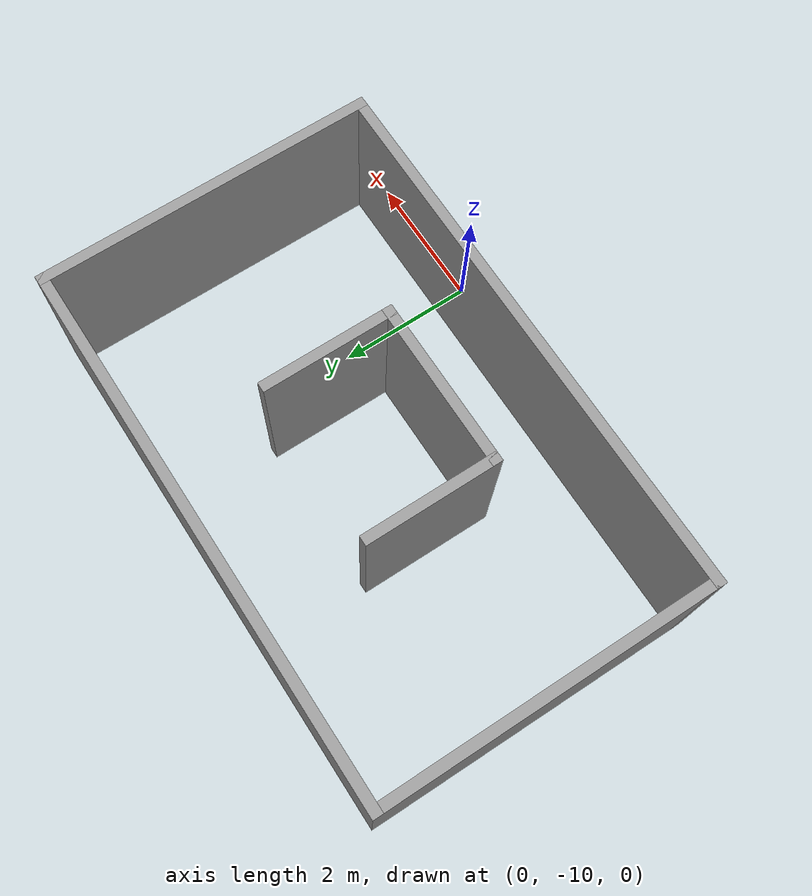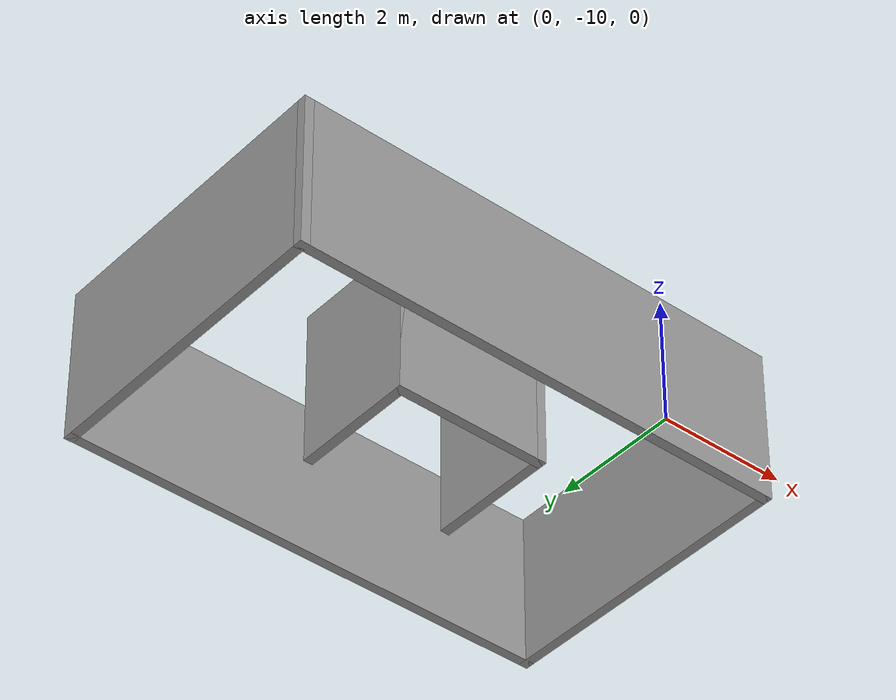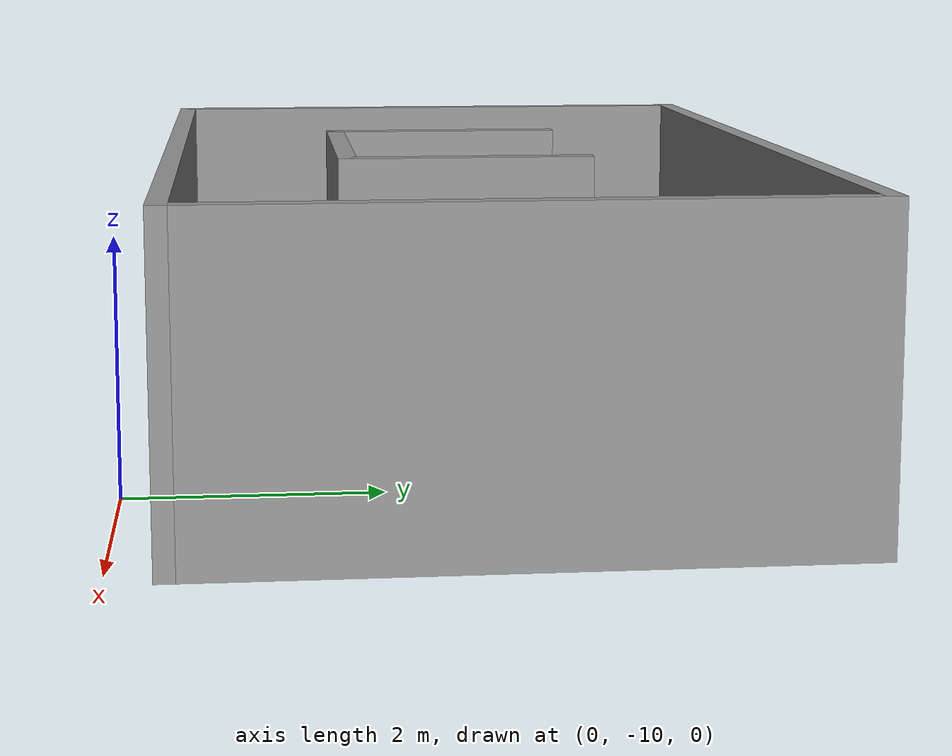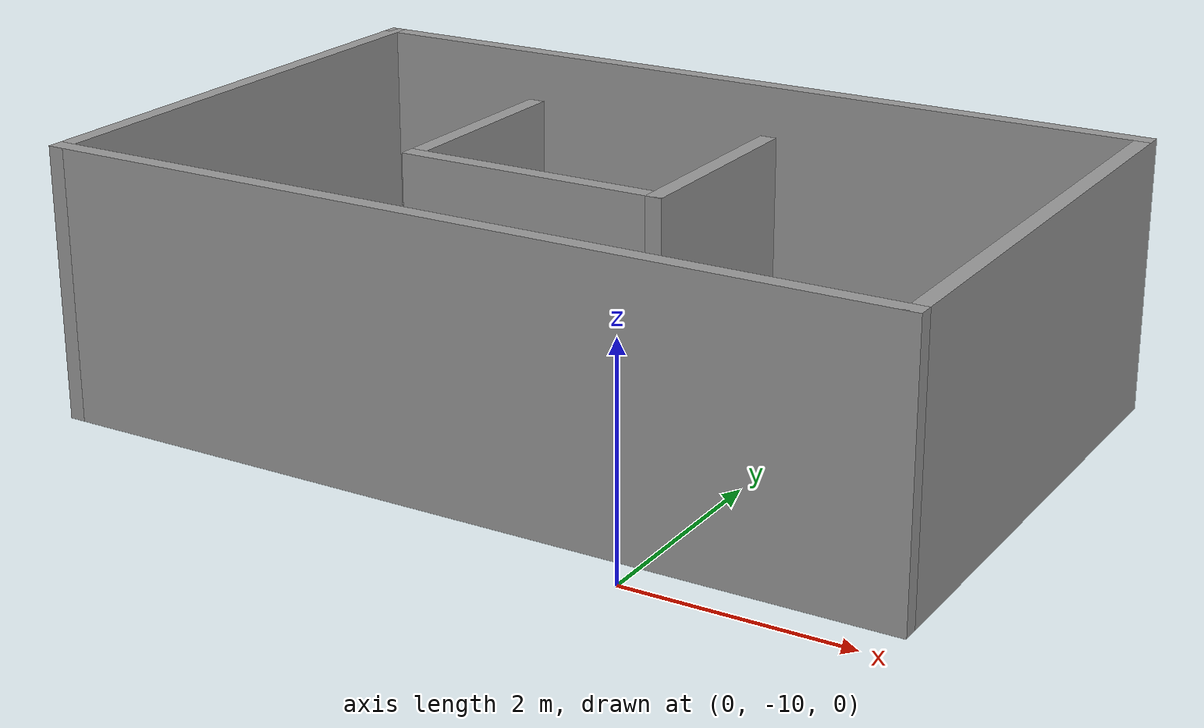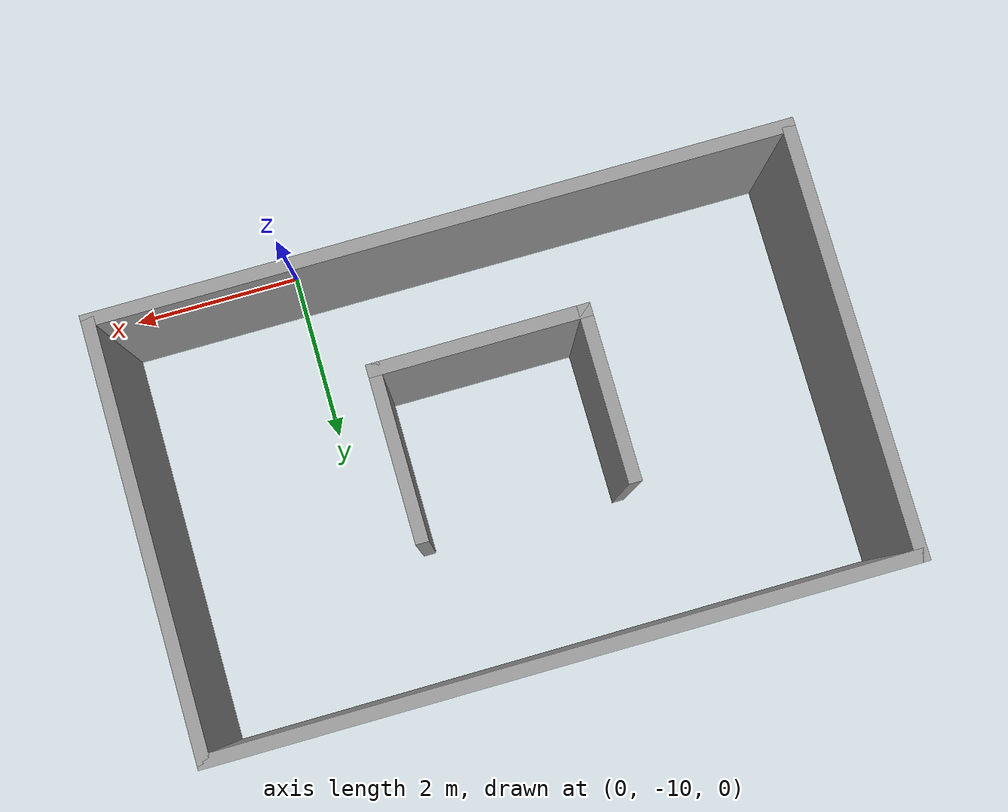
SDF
<?xml version='1.0'?>
<sdf version='1.7'>
  <model name='U_shaped_obstacle'>
    <pose>-1.78184 -4.83398 0 0 -0 0</pose>
    <link name='Wall_10'>
      <collision name='Wall_10_Collision'>
        <geometry>
          <box>
            <size>8 0.15 2.5</size>
          </box>
        </geometry>
        <pose>0 0 1.25 0 -0 0</pose>
      </collision>
      <visual name='Wall_10_Visual'>
        <pose>0 0 1.25 0 -0 0</pose>
        <geometry>
          <box>
            <size>8 0.15 2.5</size>
          </box>
        </geometry>
        <material>
          <script>
            <uri>file://media/materials/scripts/gazebo.material</uri>
            <name>Gazebo/Grey</name>
          </script>
          <ambient>1 1 1 1</ambient>
        </material>
        <meta>
          <layer>0</layer>
        </meta>
      </visual>
      <pose>0 -4.75898 0 0 -0 3.14159</pose>
    </link>
    <link name='Wall_11'>
      <collision name='Wall_11_Collision'>
        <geometry>
          <box>
            <size>5 0.15 2.5</size>
          </box>
        </geometry>
        <pose>0 0 1.25 0 -0 0</pose>
      </collision>
      <visual name='Wall_11_Visual'>
        <pose>0 0 1.25 0 -0 0</pose>
        <geometry>
          <box>
            <size>5 0.15 2.5</size>
          </box>
        </geometry>
        <material>
          <script>
            <uri>file://media/materials/scripts/gazebo.material</uri>
            <name>Gazebo/Grey</name>
          </script>
          <ambient>1 1 1 1</ambient>
        </material>
        <meta>
          <layer>0</layer>
        </meta>
      </visual>
      <pose>-3.925 -2.33398 0 0 -0 1.5708</pose>
    </link>
    <link name='Wall_4'>
      <collision name='Wall_4_Collision'>
        <geometry>
          <box>
            <size>2 0.15 2.5</size>
          </box>
        </geometry>
        <pose>0 0 1.25 0 -0 0</pose>
      </collision>
      <visual name='Wall_4_Visual'>
        <pose>0 0 1.25 0 -0 0</pose>
        <geometry>
          <box>
            <size>2 0.15 2.5</size>
          </box>
        </geometry>
        <material>
          <script>
            <uri>file://media/materials/scripts/gazebo.material</uri>
            <name>Gazebo/Grey</name>
          </script>
          <ambient>1 1 1 1</ambient>
        </material>
        <meta>
          <layer>0</layer>
        </meta>
      </visual>
      <pose>-1.234 -2.47848 0 0 -0 -1.5708</pose>
    </link>
    <link name='Wall_5'>
      <collision name='Wall_5_Collision'>
        <geometry>
          <box>
            <size>2.5 0.15 2.5</size>
          </box>
        </geometry>
        <pose>0 0 1.25 0 -0 0</pose>
      </collision>
      <visual name='Wall_5_Visual'>
        <pose>0 0 1.25 0 -0 0</pose>
        <geometry>
          <box>
            <size>2.5 0.15 2.5</size>
          </box>
        </geometry>
        <material>
          <script>
            <uri>file://media/materials/scripts/gazebo.material</uri>
            <name>Gazebo/Grey</name>
          </script>
          <ambient>1 1 1 1</ambient>
        </material>
        <meta>
          <layer>0</layer>
        </meta>
      </visual>
      <pose>-0.059 -3.40348 0 0 -0 0</pose>
    </link>
    <link name='Wall_6'>
      <collision name='Wall_6_Collision'>
        <geometry>
          <box>
            <size>2 0.15 2.5</size>
          </box>
        </geometry>
        <pose>0 0 1.25 0 -0 0</pose>
      </collision>
      <visual name='Wall_6_Visual'>
        <pose>0 0 1.25 0 -0 0</pose>
        <geometry>
          <box>
            <size>2 0.15 2.5</size>
          </box>
        </geometry>
        <material>
          <script>
            <uri>file://media/materials/scripts/gazebo.material</uri>
            <name>Gazebo/Grey</name>
          </script>
          <ambient>1 1 1 1</ambient>
        </material>
        <meta>
          <layer>0</layer>
        </meta>
      </visual>
      <pose>1.116 -2.47848 0 0 -0 1.5708</pose>
    </link>
    <link name='Wall_8'>
      <collision name='Wall_8_Collision'>
        <geometry>
          <box>
            <size>8 0.15 2.5</size>
          </box>
        </geometry>
        <pose>0 0 1.25 0 -0 0</pose>
      </collision>
      <visual name='Wall_8_Visual'>
        <pose>0 0 1.25 0 -0 0</pose>
        <geometry>
          <box>
            <size>8 0.15 2.5</size>
          </box>
        </geometry>
        <material>
          <script>
            <uri>file://media/materials/scripts/gazebo.material</uri>
            <name>Gazebo/Grey</name>
          </script>
          <ambient>1 1 1 1</ambient>
        </material>
        <meta>
          <layer>0</layer>
        </meta>
      </visual>
      <pose>0 0.091022 0 0 -0 0</pose>
    </link>
    <link name='Wall_9'>
      <collision name='Wall_9_Collision'>
        <geometry>
          <box>
            <size>5 0.15 2.5</size>
          </box>
        </geometry>
        <pose>0 0 1.25 0 -0 0</pose>
      </collision>
      <visual name='Wall_9_Visual'>
        <pose>0 0 1.25 0 -0 0</pose>
        <geometry>
          <box>
            <size>5 0.15 2.5</size>
          </box>
        </geometry>
        <material>
          <script>
            <uri>file://media/materials/scripts/gazebo.material</uri>
            <name>Gazebo/Grey</name>
          </script>
          <ambient>1 1 1 1</ambient>
        </material>
        <meta>
          <layer>0</layer>
        </meta>
      </visual>
      <pose>3.925 -2.33398 0 0 -0 -1.5708</pose>
    </link>
    <static>1</static>
  </model>
</sdf>
